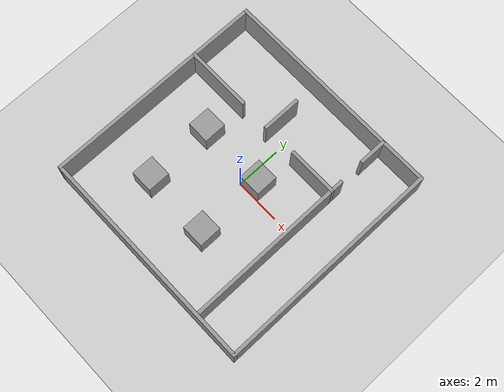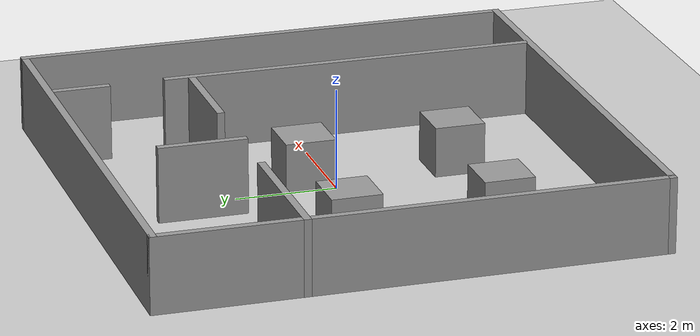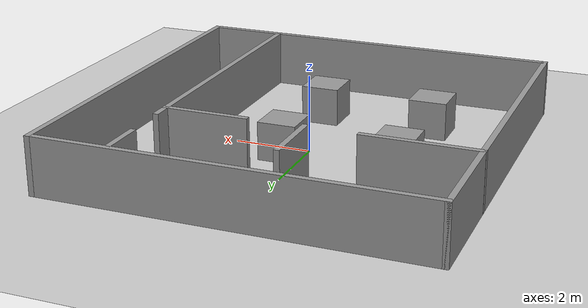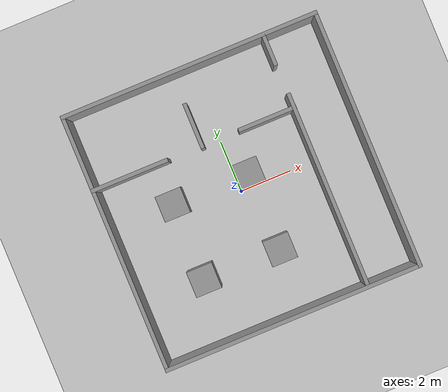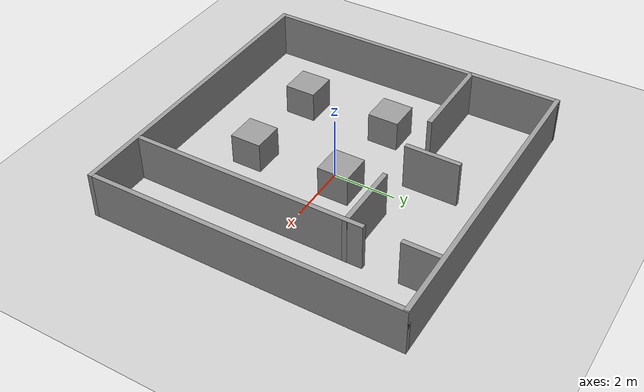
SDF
<sdf version="1.6">
 <world name="default">
  <light name="sun" type="directional">
   <pose>0 0 10 0 -0 0</pose>
   <diffuse>0.8 0.8 0.8 1</diffuse>
   <specular>0.2 0.2 0.2 1</specular>
   <attenuation>
    <range>1000</range>
    <constant>0.9</constant>
    <linear>0.01</linear>
    <quadratic>0.001</quadratic>
   </attenuation>
   <direction>-0.5 0.1 -0.9</direction>
  </light>
  <plugin name="ros_interface_plugin" filename="gazebo_ros_interface_plugin.so"/>
  <plugin name="gazebo_octomap" filename="gazebo_to_octomap_plugin.so"/>
  <model name="ground_plane">
   <static>1</static>
   <link name="link">
    <collision name="collision">
     <geometry><plane><normal>0 0 1</normal><size>100 100</size></plane></geometry>
     <surface>
      <contact><collide_bitmask>65535</collide_bitmask></contact>
      <friction><ode><mu>100</mu><mu2>50</mu2></ode></friction>
     </surface>
    </collision>
    <visual name="visual">
     <cast_shadows>0</cast_shadows>
     <geometry><plane><normal>0 0 1</normal><size>100 100</size></plane></geometry>
     <material>
      <script><uri>file://media/materials/scripts/gazebo.material</uri><name>Gazebo/Grey</name></script>
     </material>
    </visual>
   </link>
  </model>
  <gravity>0 0 -9.8</gravity>
  <magnetic_field>6e-06 2.3e-05 -4.2e-05</magnetic_field>
  <atmosphere type="adiabatic"/>
  <physics name="default_physics" default="0" type="ode">
   <max_step_size>0.001</max_step_size>
   <real_time_factor>1</real_time_factor>
   <real_time_update_rate>1000</real_time_update_rate>
  </physics>
  <scene><ambient>0.4 0.4 0.4 1</ambient><background>0.7 0.7 0.7 1</background><shadows>1</shadows></scene>
  <audio><device>default</device></audio>
  <spherical_coordinates>
   <surface_model>EARTH_WGS84</surface_model>
   <latitude_deg>0</latitude_deg>
   <longitude_deg>0</longitude_deg>
   <elevation>0</elevation>
   <heading_deg>0</heading_deg>
  </spherical_coordinates>
  <model name="room3">
   <link name="Wall_0">
    <collision name="Wall_0_Collision">
     <geometry><box><size>10 0.15 1.5</size></box></geometry>
     <pose>0 0 0.75 0 -0 0</pose>
    </collision>
    <visual name="Wall_0_Visual">
     <pose>0 0 0.75 0 -0 0</pose>
     <geometry><box><size>10 0.15 1.5</size></box></geometry>
     <material>
      <script><uri>file://media/materials/scripts/gazebo.material</uri><name>Gazebo/Grey</name></script>
      <ambient>1 1 1 1</ambient>
     </material>
     <meta><layer>0</layer></meta>
    </visual>
    <pose>0.001 4.925 0 0 -0 0</pose>
   </link>
   <link name="Wall_1">
    <collision name="Wall_1_Collision">
     <geometry><box><size>10 0.15 1.5</size></box></geometry>
     <pose>0 0 0.75 0 -0 0</pose>
    </collision>
    <visual name="Wall_1_Visual">
     <pose>0 0 0.75 0 -0 0</pose>
     <geometry><box><size>10 0.15 1.5</size></box></geometry>
     <material>
      <script><uri>file://media/materials/scripts/gazebo.material</uri><name>Gazebo/Grey</name></script>
      <ambient>1 1 1 1</ambient>
     </material>
     <meta><layer>0</layer></meta>
    </visual>
    <pose>4.926 -0 0 0 -0 -1.5708</pose>
   </link>
   <link name="Wall_11">
    <collision name="Wall_11_Collision">
     <geometry><box><size>3 0.15 1.5</size></box></geometry>
     <pose>0 0 0.75 0 -0 0</pose>
    </collision>
    <visual name="Wall_11_Visual">
     <pose>0 0 0.75 0 -0 0</pose>
     <geometry><box><size>3 0.15 1.5</size></box></geometry>
     <material>
      <script><uri>file://media/materials/scripts/gazebo.material</uri><name>Gazebo/Grey</name></script>
      <ambient>1 1 1 1</ambient>
     </material>
     <meta><layer>0</layer></meta>
    </visual>
    <pose>-3.501 2.069 0 0 -0 0</pose>
   </link>
   <link name="Wall_2">
    <collision name="Wall_2_Collision">
     <geometry><box><size>10 0.15 1.5</size></box></geometry>
     <pose>0 0 0.75 0 -0 0</pose>
    </collision>
    <visual name="Wall_2_Visual">
     <pose>0 0 0.75 0 -0 0</pose>
     <geometry><box><size>10 0.15 1.5</size></box></geometry>
     <material>
      <script><uri>file://media/materials/scripts/gazebo.material</uri><name>Gazebo/Grey</name></script>
      <ambient>1 1 1 1</ambient>
     </material>
     <meta><layer>0</layer></meta>
    </visual>
    <pose>0.001 -4.925 0 0 -0 3.14159</pose>
   </link>
   <link name="Wall_23">
    <collision name="Wall_23_Collision">
     <geometry><box><size>7.5 0.15 1.5</size></box></geometry>
     <pose>0 0 0.75 0 -0 0</pose>
    </collision>
    <visual name="Wall_23_Visual">
     <pose>0 0 0.75 0 -0 0</pose>
     <geometry><box><size>7.5 0.15 1.5</size></box></geometry>
     <material>
      <script><uri>file://media/materials/scripts/gazebo.material</uri><name>Gazebo/Grey</name></script>
      <ambient>1 1 1 1</ambient>
     </material>
     <meta><layer>0</layer></meta>
    </visual>
    <pose>2.919 -1.13 0 0 -0 -1.5708</pose>
   </link>
   <link name="Wall_25">
    <collision name="Wall_25_Collision">
     <geometry><box><size>1.25 0.15 1.5</size></box></geometry>
     <pose>0 0 0.75 0 -0 0</pose>
    </collision>
    <visual name="Wall_25_Visual">
     <pose>0 0 0.75 0 -0 0</pose>
     <geometry><box><size>1.25 0.15 1.5</size></box></geometry>
     <material>
      <script><uri>file://media/materials/scripts/gazebo.material</uri><name>Gazebo/Grey</name></script>
      <ambient>1 1 1 1</ambient>
     </material>
     <meta><layer>0</layer></meta>
    </visual>
    <pose>2.892 4.336 0 0 -0 -1.5708</pose>
   </link>
   <link name="Wall_29">
    <collision name="Wall_29_Collision">
     <geometry><box><size>2.25 0.15 1.5</size></box></geometry>
     <pose>0 0 0.75 0 -0 0</pose>
    </collision>
    <visual name="Wall_29_Visual">
     <pose>0 0 0.75 0 -0 0</pose>
     <geometry><box><size>2.25 0.15 1.5</size></box></geometry>
     <material>
      <script><uri>file://media/materials/scripts/gazebo.material</uri><name>Gazebo/Grey</name></script>
      <ambient>1 1 1 1</ambient>
     </material>
     <meta><layer>0</layer></meta>
    </visual>
    <pose>1.875 2.069 0 0 -0 0</pose>
   </link>
   <link name="Wall_3">
    <collision name="Wall_3_Collision">
     <geometry><box><size>10 0.15 1.5</size></box></geometry>
     <pose>0 0 0.75 0 -0 0</pose>
    </collision>
    <visual name="Wall_3_Visual">
     <pose>0 0 0.75 0 -0 0</pose>
     <geometry><box><size>10 0.15 1.5</size></box></geometry>
     <material>
      <script><uri>file://media/materials/scripts/gazebo.material</uri><name>Gazebo/Grey</name></script>
      <ambient>1 1 1 1</ambient>
     </material>
     <meta><layer>0</layer></meta>
    </visual>
    <pose>-4.924 -0 0 0 -0 1.5708</pose>
   </link>
   <link name="Wall_31">
    <collision name="Wall_31_Collision">
     <geometry><box><size>1.75 0.15 1.5</size></box></geometry>
     <pose>0 0 0.75 0 -0 0</pose>
    </collision>
    <visual name="Wall_31_Visual">
     <pose>0 0 0.75 0 -0 0</pose>
     <geometry><box><size>1.75 0.15 1.5</size></box></geometry>
     <material>
      <script><uri>file://media/materials/scripts/gazebo.material</uri><name>Gazebo/Grey</name></script>
      <ambient>1 1 1 1</ambient>
     </material>
     <meta><layer>0</layer></meta>
    </visual>
    <pose>-0.678 2.836 0 0 -0 -1.5708</pose>
   </link>
   <static>1</static>
  </model>
  <model name="unit_box">
   <pose>-2.4985 0.515075 0.499995 -1e-05 -0 -0</pose>
   <link name="link">
    <inertial>
     <mass>1</mass>
     <inertia>
      <ixx>0.166667</ixx>
      <ixy>0</ixy>
      <ixz>0</ixz>
      <iyy>0.166667</iyy>
      <iyz>0</iyz>
      <izz>0.166667</izz>
     </inertia>
    </inertial>
    <collision name="collision"><geometry><box><size>1 1 1</size></box></geometry></collision>
    <visual name="visual">
     <geometry><box><size>1 1 1</size></box></geometry>
     <material>
      <script><name>Gazebo/Grey</name><uri>file://media/materials/scripts/gazebo.material</uri></script>
     </material>
    </visual>
   </link>
  </model>
  <model name="unit_box_0">
   <pose>-2.4937 -2.46863 0.499995 0 1e-05 0</pose>
   <link name="link">
    <inertial>
     <mass>1</mass>
     <inertia>
      <ixx>0.166667</ixx>
      <ixy>0</ixy>
      <ixz>0</ixz>
      <iyy>0.166667</iyy>
      <iyz>0</iyz>
      <izz>0.166667</izz>
     </inertia>
    </inertial>
    <collision name="collision"><geometry><box><size>1 1 1</size></box></geometry></collision>
    <visual name="visual">
     <geometry><box><size>1 1 1</size></box></geometry>
     <material>
      <script><name>Gazebo/Grey</name><uri>file://media/materials/scripts/gazebo.material</uri></script>
     </material>
    </visual>
   </link>
  </model>
  <model name="unit_box_1">
   <pose>0.501899 -2.50113 0.499995 -1e-05 -0 0</pose>
   <link name="link">
    <inertial>
     <mass>1</mass>
     <inertia>
      <ixx>0.166667</ixx>
      <ixy>0</ixy>
      <ixz>0</ixz>
      <iyy>0.166667</iyy>
      <iyz>0</iyz>
      <izz>0.166667</izz>
     </inertia>
    </inertial>
    <collision name="collision"><geometry><box><size>1 1 1</size></box></geometry></collision>
    <visual name="visual">
     <geometry><box><size>1 1 1</size></box></geometry>
     <material>
      <script><name>Gazebo/Grey</name><uri>file://media/materials/scripts/gazebo.material</uri></script>
     </material>
    </visual>
   </link>
  </model>
  <model name="unit_box_2">
   <pose>0.492701 0.502069 0.5 0 -0 0</pose>
   <link name="link">
    <inertial>
     <mass>1</mass>
     <inertia>
      <ixx>0.166667</ixx>
      <ixy>0</ixy>
      <ixz>0</ixz>
      <iyy>0.166667</iyy>
      <iyz>0</iyz>
      <izz>0.166667</izz>
     </inertia>
    </inertial>
    <collision name="collision"><geometry><box><size>1 1 1</size></box></geometry></collision>
    <visual name="visual">
     <geometry><box><size>1 1 1</size></box></geometry>
     <material>
      <script><name>Gazebo/Grey</name><uri>file://media/materials/scripts/gazebo.material</uri></script>
     </material>
    </visual>
   </link>
  </model>
 </world>
</sdf>
